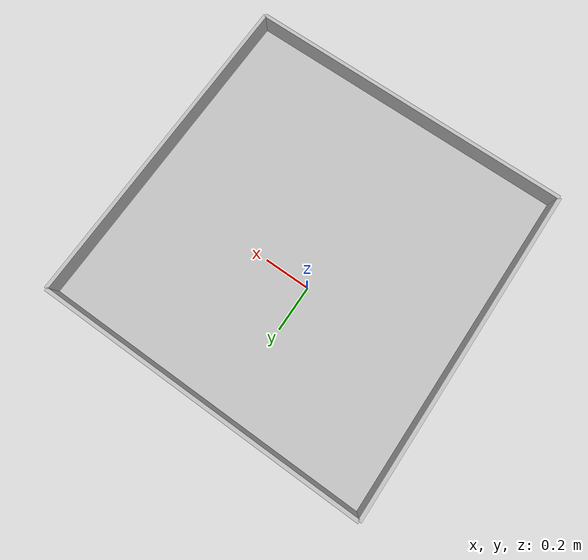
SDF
<?xml version="1.0" ?>
<sdf version="1.4">
  <model name="cafe_table">
    <static>true</static>
    <link name="link">
      <collision name="surface">
        <pose>0 0 0.755 0 0 0</pose>
        <geometry>
          <box>
            <size>0.913 0.913 0.04</size>
          </box>
        </geometry>
      </collision>

      <collision name="column">
        <pose>0 0 0.37 0 0 0</pose>
        <geometry>
          <box>
            <size>0.042 0.042 0.74</size>
          </box>
        </geometry>
      </collision>

      <collision name="left_wall">
        <pose>0 -0.457 0.785 0 0 0</pose>
        <geometry>
          <box>
            <size>0.913 0.010 0.10</size>
          </box>
        </geometry>
      </collision>

      <collision name="right_wall">
        <pose>0 0.457 0.785 0 0 0</pose>
        <geometry>
          <box>
            <size>0.913 0.010 0.10</size>
          </box>
        </geometry>
      </collision>

      <collision name="front_wall">
        <pose>-0.457 0 0.785 0 0 0</pose>
        <geometry>
          <box>
            <size>0.010 0.913 0.10</size>
          </box>
        </geometry>
      </collision>

      <collision name="back_wall">
        <pose>0.457 0 0.785 0 0 0</pose>
        <geometry>
          <box>
            <size>0.010 0.913 0.10</size>
          </box>
        </geometry>
      </collision>

      <collision name="base">
        <pose>0 0 0.02 0 0 0</pose>
        <geometry>
          <box>
            <size>0.56 0.56 0.04</size>
          </box>
        </geometry>
      </collision>

      <visual name="visual_surface">
        <pose>0 0 0.755 0 0 0</pose>
        <geometry>
          <box>
            <size>0.913 0.913 0.04</size>
          </box>
        </geometry>
      </visual>

      <visual name="visual_column">
        <pose>0 0 0.37 0 0 0</pose>
        <geometry>
          <box>
            <size>0.042 0.042 0.74</size>
          </box>
        </geometry>
      </visual>

      <visual name="visual_left_wall">
        <pose>0 -0.457 0.785 0 0 0</pose>
        <geometry>
          <box>
            <size>0.913 0.010 0.10</size>
          </box>
        </geometry>
      </visual>

      <visual name="visual_right_wall">
        <pose>0 0.457 0.785 0 0 0</pose>
        <geometry>
          <box>
            <size>0.913 0.010 0.10</size>
          </box>
        </geometry>
      </visual>

      <visual name="visual_front_wall">
        <pose>-0.457 0 0.785 0 0 0</pose>
        <geometry>
          <box>
            <size>0.010 0.913 0.10</size>
          </box>
        </geometry>
      </visual>

      <visual name="visual_back_wall">
        <pose>0.457 0 0.785 0 0 0</pose>
        <geometry>
          <box>
            <size>0.010 0.913 0.10</size>
          </box>
        </geometry>
      </visual>

      <visual name="visual_base">
        <pose>0 0 0.02 0 0 0</pose>
        <geometry>
          <box>
            <size>0.56 0.56 0.04</size>
          </box>
        </geometry>
      </visual>

    </link>
  </model>
</sdf>
